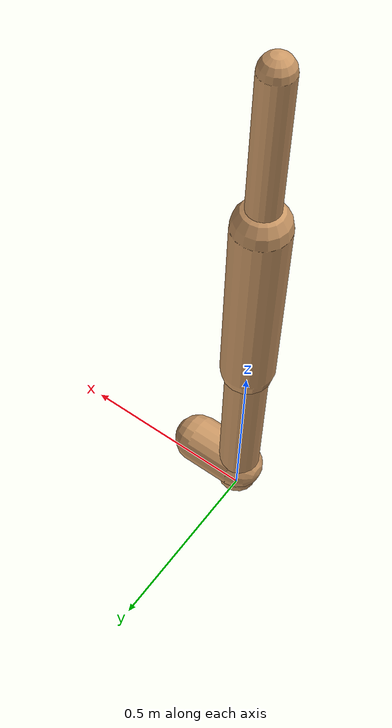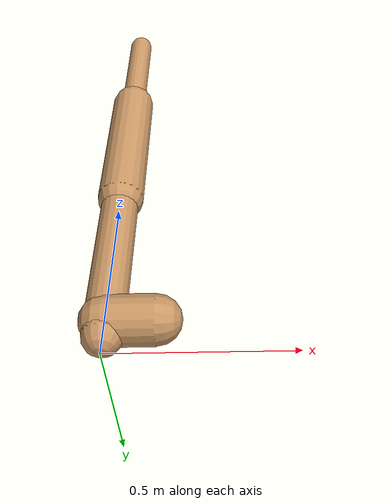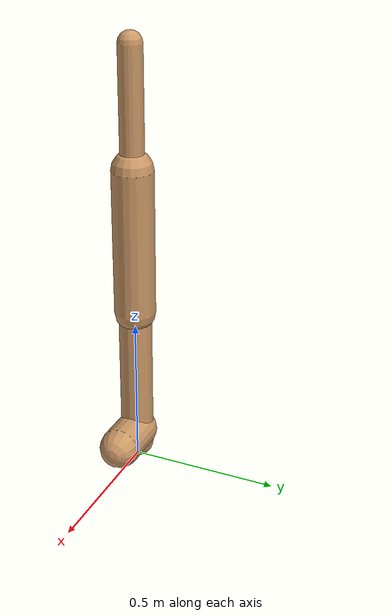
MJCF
<mujoco model="walker2d">
  <compiler angle="degree" coordinate="global" inertiafromgeom="true" />
  <default>
    <joint armature="0.01" damping=".1" limited="true" />
    <geom conaffinity="0" condim="3" contype="1" density="1000" friction="0.8 .1 .1" rgba="0.8 0.6 .4 1" />
  </default>
  <option integrator="RK4" timestep="0.002" />
  <worldbody>

    <body name="torso" pos="0 0 0.08969548478037884">
      <joint armature="0" axis="1 0 0" damping="0" limited="false" name="ignorex" pos="0 0 0" stiffness="0" type="slide" />
      <joint armature="0" axis="0 0 1" damping="0" limited="false" name="ignorez" pos="0 0 0" ref="1.25" stiffness="0" type="slide" />
      <joint armature="0" axis="0 1 0" damping="0" limited="false" name="ignorey" pos="0 0 0" stiffness="0" type="hinge" />
      <geom fromto="0 0 1.45 0 0 1.05" name="torso_geom" size="0.03999103713196251" type="capsule" />
      <body name="thigh">
        <joint axis="0 -1 0" name="thigh_joint" pos="0 0 1.05" range="-150 0" type="hinge" />
        <geom fromto="0.0 0.0 1.05 0.0 0.0 0.5575126651040311" name="thigh_geom" size="0.06960808882674552" type="capsule" />
        <body name="leg" pos="0.0 0.0 -0.0424873348959689">
          <joint axis="0 -1 0" name="leg_joint" pos="0 0 0.6" range="-150 0" type="hinge" />
          <geom fromto="0.0 0.0 0.6 0.0 0.0 0.052791850115590094" name="leg_geom" size="0.05568647106139642" type="capsule" />
          <body name="foot" pos="0.0 0.0 -0.04720814988440991">
            <joint axis="0 -1 0" name="foot_joint" pos="0 0 0.1" range="-45 45" type="hinge" />
            <geom fromto="0.0 0.0 0.1 0.13526106259443638 0.0 0.1" name="foot_geom" size="0.06858887225911449" type="capsule" />
          </body>
        </body>
      </body>

      <body name="thigh_left">
        <joint axis="0 -1 0" name="thigh_left_joint" pos="0 0 1.05" range="-150 0" type="hinge" />
        <geom fromto="0.0 0.0 1.05 0.0 0.0 0.5575126651040311" name="thigh_left_geom" rgba=".7 .3 .6 1" size="0.06960808882674552" type="capsule" />
        <body name="leg_left" pos="0.0 0.0 -0.0424873348959689">
          <joint axis="0 -1 0" name="leg_left_joint" pos="0 0 0.6" range="-150 0" type="hinge" />
          <geom fromto="0.0 0.0 0.6 0.0 0.0 0.052791850115590094" name="leg_left_geom" rgba=".7 .3 .6 1" size="0.05568647106139642" type="capsule" />
          <body name="foot_left" pos="0.0 0.0 -0.04720814988440991">
            <joint axis="0 -1 0" name="foot_left_joint" pos="0 0 0.1" range="-45 45" type="hinge" />
            <geom fromto="0.0 0.0 0.1 0.13526106259443638 0.0 0.1" name="foot_left_geom" rgba=".7 .3 .6 1" size="0.06858887225911449" type="capsule" />
          </body>
        </body>
      </body>
    </body>
  </worldbody>
  <actuator>

    <motor ctrllimited="true" ctrlrange="-1.0 1.0" gear="100" joint="thigh_joint" />
    <motor ctrllimited="true" ctrlrange="-1.0 1.0" gear="100" joint="leg_joint" />
    <motor ctrllimited="true" ctrlrange="-1.0 1.0" gear="100" joint="foot_joint" />
    <motor ctrllimited="true" ctrlrange="-1.0 1.0" gear="100" joint="thigh_left_joint" />
    <motor ctrllimited="true" ctrlrange="-1.0 1.0" gear="100" joint="leg_left_joint" />
    <motor ctrllimited="true" ctrlrange="-1.0 1.0" gear="100" joint="foot_left_joint" />

  </actuator>
</mujoco>
